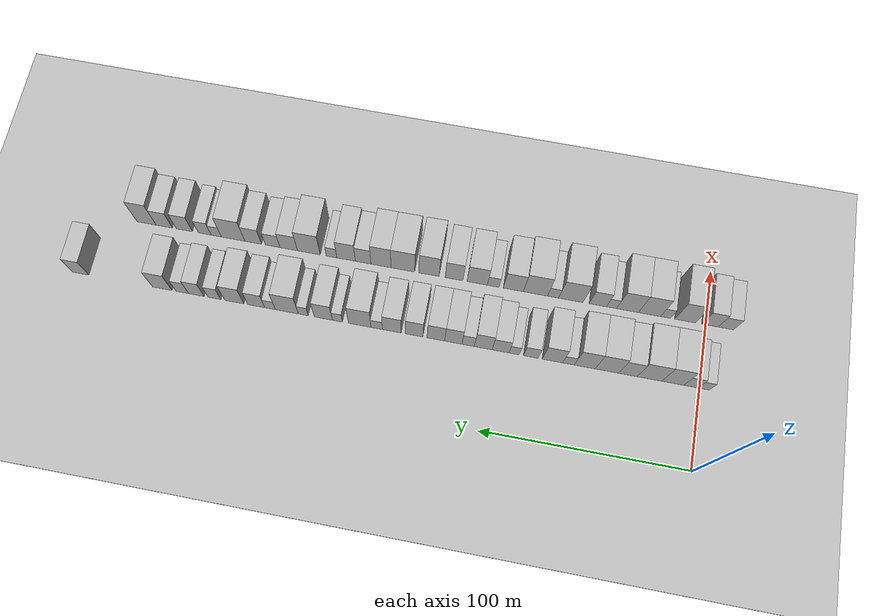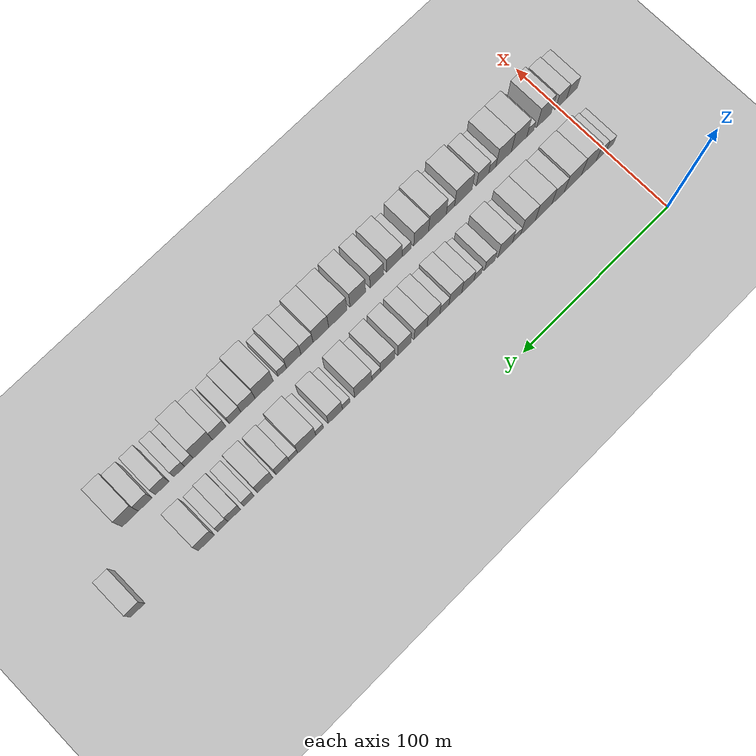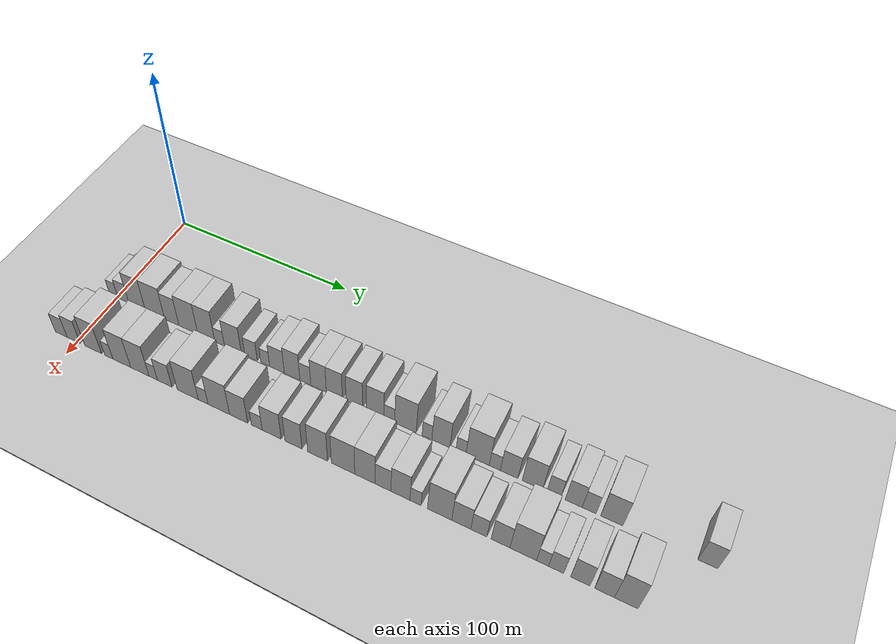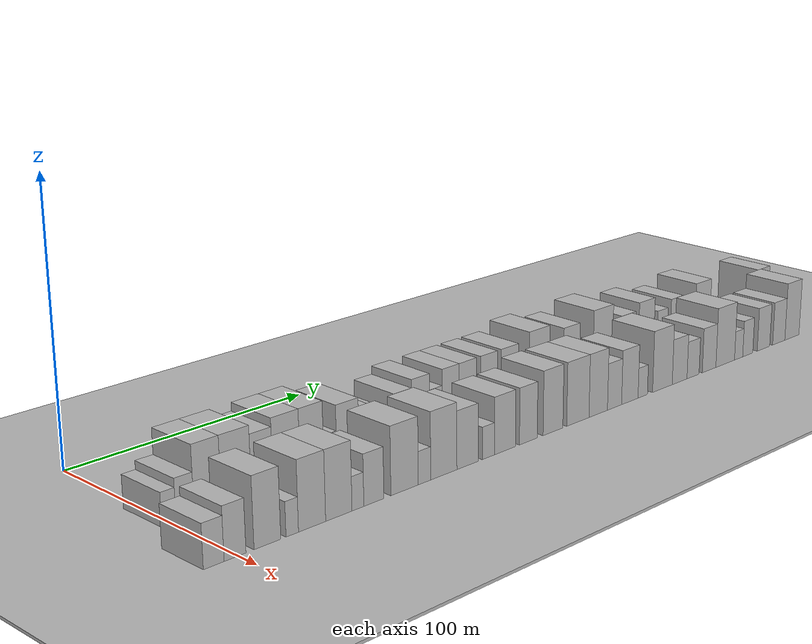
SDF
<sdf version="1.6">
 <world name="default">
  <include><name>ground_plane_1</name><uri>model://HANNAS_ground_plane</uri></include>
  <include>
   <name>ground_plane_2</name>
   <uri>model://HANNAS_ground_plane</uri>
   <pose>100 0 0  0 0 0</pose>
  </include>
  <model name="building_33">
   <static>1</static>
   <pose>50.0000 -1.9097 0 0.000000 0.000000 0.000000</pose>
   <link name="link">
    <pose>0 0 6.00 0 0 0</pose>
    <collision name="collision"><geometry><box><size>20.0000 5.2747 12.0000</size></box></geometry></collision>
    <visual name="visual">
     <cast_shadows>0</cast_shadows>
     <geometry><box><size>20.0000 5.2747 12.0000</size></box></geometry>
     <material>
      <script>
       <uri>model://HANNAS_wall/materials/scripts</uri>
       <uri>model://HANNAS_wall/materials/textures</uri>
       <name>vrc/HANNAS_wall</name>
      </script>
     </material>
    </visual>
   </link>
  </model>
  <model name="building_34">
   <static>1</static>
   <pose>50.0000 4.1421 0 0.000000 0.000000 0.000000</pose>
   <link name="link">
    <pose>0 0 7.50 0 0 0</pose>
    <collision name="collision"><geometry><box><size>20.0000 6.8289 15.0000</size></box></geometry></collision>
    <visual name="visual">
     <cast_shadows>0</cast_shadows>
     <geometry><box><size>20.0000 6.8289 15.0000</size></box></geometry>
     <material>
      <script>
       <uri>model://HANNAS_wall/materials/scripts</uri>
       <uri>model://HANNAS_wall/materials/textures</uri>
       <name>vrc/HANNAS_wall</name>
      </script>
     </material>
    </visual>
   </link>
  </model>
  <model name="building_35">
   <static>1</static>
   <pose>50.0000 12.7904 0 0.000000 0.000000 0.000000</pose>
   <link name="link">
    <pose>0 0 12.00 0 0 0</pose>
    <collision name="collision"><geometry><box><size>20.0000 10.4679 24.0000</size></box></geometry></collision>
    <visual name="visual">
     <cast_shadows>0</cast_shadows>
     <geometry><box><size>20.0000 10.4679 24.0000</size></box></geometry>
     <material>
      <script>
       <uri>model://HANNAS_wall/materials/scripts</uri>
       <uri>model://HANNAS_wall/materials/textures</uri>
       <name>vrc/HANNAS_wall</name>
      </script>
     </material>
    </visual>
   </link>
  </model>
  <model name="building_36">
   <static>1</static>
   <pose>50.0000 23.9557 0 0.000000 0.000000 0.000000</pose>
   <link name="link">
    <pose>0 0 12.00 0 0 0</pose>
    <collision name="collision"><geometry><box><size>20.0000 11.8626 24.0000</size></box></geometry></collision>
    <visual name="visual">
     <cast_shadows>0</cast_shadows>
     <geometry><box><size>20.0000 11.8626 24.0000</size></box></geometry>
     <material>
      <script>
       <uri>model://HANNAS_wall/materials/scripts</uri>
       <uri>model://HANNAS_wall/materials/textures</uri>
       <name>vrc/HANNAS_wall</name>
      </script>
     </material>
    </visual>
   </link>
  </model>
  <model name="building_37">
   <static>1</static>
   <pose>50.0000 34.2631 0 0.000000 0.000000 0.000000</pose>
   <link name="link">
    <pose>0 0 10.50 0 0 0</pose>
    <collision name="collision"><geometry><box><size>20.0000 8.7522 21.0000</size></box></geometry></collision>
    <visual name="visual">
     <cast_shadows>0</cast_shadows>
     <geometry><box><size>20.0000 8.7522 21.0000</size></box></geometry>
     <material>
      <script>
       <uri>model://HANNAS_wall/materials/scripts</uri>
       <uri>model://HANNAS_wall/materials/textures</uri>
       <name>vrc/HANNAS_wall</name>
      </script>
     </material>
    </visual>
   </link>
  </model>
  <model name="building_38">
   <static>1</static>
   <pose>50.0000 44.2862 0 0.000000 0.000000 0.000000</pose>
   <link name="link">
    <pose>0 0 12.00 0 0 0</pose>
    <collision name="collision"><geometry><box><size>20.0000 11.2942 24.0000</size></box></geometry></collision>
    <visual name="visual">
     <cast_shadows>0</cast_shadows>
     <geometry><box><size>20.0000 11.2942 24.0000</size></box></geometry>
     <material>
      <script>
       <uri>model://HANNAS_wall/materials/scripts</uri>
       <uri>model://HANNAS_wall/materials/textures</uri>
       <name>vrc/HANNAS_wall</name>
      </script>
     </material>
    </visual>
   </link>
  </model>
  <model name="building_39">
   <static>1</static>
   <pose>50.0000 54.9915 0 0.000000 0.000000 0.000000</pose>
   <link name="link">
    <pose>0 0 12.00 0 0 0</pose>
    <collision name="collision"><geometry><box><size>20.0000 10.1165 24.0000</size></box></geometry></collision>
    <visual name="visual">
     <cast_shadows>0</cast_shadows>
     <geometry><box><size>20.0000 10.1165 24.0000</size></box></geometry>
     <material>
      <script>
       <uri>model://HANNAS_wall/materials/scripts</uri>
       <uri>model://HANNAS_wall/materials/textures</uri>
       <name>vrc/HANNAS_wall</name>
      </script>
     </material>
    </visual>
   </link>
  </model>
  <model name="building_40">
   <static>1</static>
   <pose>50.0000 62.8666 0 0.000000 0.000000 0.000000</pose>
   <link name="link">
    <pose>0 0 6.00 0 0 0</pose>
    <collision name="collision"><geometry><box><size>20.0000 5.6337 12.0000</size></box></geometry></collision>
    <visual name="visual">
     <cast_shadows>0</cast_shadows>
     <geometry><box><size>20.0000 5.6337 12.0000</size></box></geometry>
     <material>
      <script>
       <uri>model://HANNAS_wall/materials/scripts</uri>
       <uri>model://HANNAS_wall/materials/textures</uri>
       <name>vrc/HANNAS_wall</name>
      </script>
     </material>
    </visual>
   </link>
  </model>
  <model name="building_41">
   <static>1</static>
   <pose>50.0000 70.6148 0 0.000000 0.000000 0.000000</pose>
   <link name="link">
    <pose>0 0 10.50 0 0 0</pose>
    <collision name="collision"><geometry><box><size>20.0000 9.8627 21.0000</size></box></geometry></collision>
    <visual name="visual">
     <cast_shadows>0</cast_shadows>
     <geometry><box><size>20.0000 9.8627 21.0000</size></box></geometry>
     <material>
      <script>
       <uri>model://HANNAS_wall/materials/scripts</uri>
       <uri>model://HANNAS_wall/materials/textures</uri>
       <name>vrc/HANNAS_wall</name>
      </script>
     </material>
    </visual>
   </link>
  </model>
  <model name="building_42">
   <static>1</static>
   <pose>50.0000 81.0959 0 0.000000 0.000000 0.000000</pose>
   <link name="link">
    <pose>0 0 7.50 0 0 0</pose>
    <collision name="collision"><geometry><box><size>20.0000 7.0994 15.0000</size></box></geometry></collision>
    <visual name="visual">
     <cast_shadows>0</cast_shadows>
     <geometry><box><size>20.0000 7.0994 15.0000</size></box></geometry>
     <material>
      <script>
       <uri>model://HANNAS_wall/materials/scripts</uri>
       <uri>model://HANNAS_wall/materials/textures</uri>
       <name>vrc/HANNAS_wall</name>
      </script>
     </material>
    </visual>
   </link>
  </model>
  <model name="building_43">
   <static>1</static>
   <pose>50.0000 89.1589 0 0.000000 0.000000 0.000000</pose>
   <link name="link">
    <pose>0 0 6.00 0 0 0</pose>
    <collision name="collision"><geometry><box><size>20.0000 5.0266 12.0000</size></box></geometry></collision>
    <visual name="visual">
     <cast_shadows>0</cast_shadows>
     <geometry><box><size>20.0000 5.0266 12.0000</size></box></geometry>
     <material>
      <script>
       <uri>model://HANNAS_wall/materials/scripts</uri>
       <uri>model://HANNAS_wall/materials/textures</uri>
       <name>vrc/HANNAS_wall</name>
      </script>
     </material>
    </visual>
   </link>
  </model>
  <model name="building_44">
   <static>1</static>
   <pose>50.0000 95.7803 0 0.000000 0.000000 0.000000</pose>
   <link name="link">
    <pose>0 0 9.00 0 0 0</pose>
    <collision name="collision"><geometry><box><size>20.0000 8.2162 18.0000</size></box></geometry></collision>
    <visual name="visual">
     <cast_shadows>0</cast_shadows>
     <geometry><box><size>20.0000 8.2162 18.0000</size></box></geometry>
     <material>
      <script>
       <uri>model://HANNAS_wall/materials/scripts</uri>
       <uri>model://HANNAS_wall/materials/textures</uri>
       <name>vrc/HANNAS_wall</name>
      </script>
     </material>
    </visual>
   </link>
  </model>
  <model name="building_45">
   <static>1</static>
   <pose>50.0000 104.2209 0 0.000000 0.000000 0.000000</pose>
   <link name="link">
    <pose>0 0 10.50 0 0 0</pose>
    <collision name="collision"><geometry><box><size>20.0000 8.6650 21.0000</size></box></geometry></collision>
    <visual name="visual">
     <cast_shadows>0</cast_shadows>
     <geometry><box><size>20.0000 8.6650 21.0000</size></box></geometry>
     <material>
      <script>
       <uri>model://HANNAS_wall/materials/scripts</uri>
       <uri>model://HANNAS_wall/materials/textures</uri>
       <name>vrc/HANNAS_wall</name>
      </script>
     </material>
    </visual>
   </link>
  </model>
  <model name="building_46">
   <static>1</static>
   <pose>50.0000 111.5624 0 0.000000 0.000000 0.000000</pose>
   <link name="link">
    <pose>0 0 7.50 0 0 0</pose>
    <collision name="collision"><geometry><box><size>20.0000 6.0179 15.0000</size></box></geometry></collision>
    <visual name="visual">
     <cast_shadows>0</cast_shadows>
     <geometry><box><size>20.0000 6.0179 15.0000</size></box></geometry>
     <material>
      <script>
       <uri>model://HANNAS_wall/materials/scripts</uri>
       <uri>model://HANNAS_wall/materials/textures</uri>
       <name>vrc/HANNAS_wall</name>
      </script>
     </material>
    </visual>
   </link>
  </model>
  <model name="building_47">
   <static>1</static>
   <pose>50.0000 118.7976 0 0.000000 0.000000 0.000000</pose>
   <link name="link">
    <pose>0 0 10.50 0 0 0</pose>
    <collision name="collision"><geometry><box><size>20.0000 8.4525 21.0000</size></box></geometry></collision>
    <visual name="visual">
     <cast_shadows>0</cast_shadows>
     <geometry><box><size>20.0000 8.4525 21.0000</size></box></geometry>
     <material>
      <script>
       <uri>model://HANNAS_wall/materials/scripts</uri>
       <uri>model://HANNAS_wall/materials/textures</uri>
       <name>vrc/HANNAS_wall</name>
      </script>
     </material>
    </visual>
   </link>
  </model>
  <model name="building_48">
   <static>1</static>
   <pose>50.0000 127.3523 0 0.000000 0.000000 0.000000</pose>
   <link name="link">
    <pose>0 0 10.50 0 0 0</pose>
    <collision name="collision"><geometry><box><size>20.0000 8.6569 21.0000</size></box></geometry></collision>
    <visual name="visual">
     <cast_shadows>0</cast_shadows>
     <geometry><box><size>20.0000 8.6569 21.0000</size></box></geometry>
     <material>
      <script>
       <uri>model://HANNAS_wall/materials/scripts</uri>
       <uri>model://HANNAS_wall/materials/textures</uri>
       <name>vrc/HANNAS_wall</name>
      </script>
     </material>
    </visual>
   </link>
  </model>
  <model name="building_49">
   <static>1</static>
   <pose>50.0000 138.0008 0 0.000000 0.000000 0.000000</pose>
   <link name="link">
    <pose>0 0 10.50 0 0 0</pose>
    <collision name="collision"><geometry><box><size>20.0000 8.6401 21.0000</size></box></geometry></collision>
    <visual name="visual">
     <cast_shadows>0</cast_shadows>
     <geometry><box><size>20.0000 8.6401 21.0000</size></box></geometry>
     <material>
      <script>
       <uri>model://HANNAS_wall/materials/scripts</uri>
       <uri>model://HANNAS_wall/materials/textures</uri>
       <name>vrc/HANNAS_wall</name>
      </script>
     </material>
    </visual>
   </link>
  </model>
  <model name="building_50">
   <static>1</static>
   <pose>50.0000 148.9457 0 0.000000 0.000000 0.000000</pose>
   <link name="link">
    <pose>0 0 10.50 0 0 0</pose>
    <collision name="collision"><geometry><box><size>20.0000 9.2497 21.0000</size></box></geometry></collision>
    <visual name="visual">
     <cast_shadows>0</cast_shadows>
     <geometry><box><size>20.0000 9.2497 21.0000</size></box></geometry>
     <material>
      <script>
       <uri>model://HANNAS_wall/materials/scripts</uri>
       <uri>model://HANNAS_wall/materials/textures</uri>
       <name>vrc/HANNAS_wall</name>
      </script>
     </material>
    </visual>
   </link>
  </model>
  <model name="building_51">
   <static>1</static>
   <pose>50.0000 156.3845 0 0.000000 0.000000 0.000000</pose>
   <link name="link">
    <pose>0 0 6.00 0 0 0</pose>
    <collision name="collision"><geometry><box><size>20.0000 5.6278 12.0000</size></box></geometry></collision>
    <visual name="visual">
     <cast_shadows>0</cast_shadows>
     <geometry><box><size>20.0000 5.6278 12.0000</size></box></geometry>
     <material>
      <script>
       <uri>model://HANNAS_wall/materials/scripts</uri>
       <uri>model://HANNAS_wall/materials/textures</uri>
       <name>vrc/HANNAS_wall</name>
      </script>
     </material>
    </visual>
   </link>
  </model>
  <model name="building_52">
   <static>1</static>
   <pose>50.0000 164.7466 0 0.000000 0.000000 0.000000</pose>
   <link name="link">
    <pose>0 0 12.00 0 0 0</pose>
    <collision name="collision"><geometry><box><size>20.0000 11.0963 24.0000</size></box></geometry></collision>
    <visual name="visual">
     <cast_shadows>0</cast_shadows>
     <geometry><box><size>20.0000 11.0963 24.0000</size></box></geometry>
     <material>
      <script>
       <uri>model://HANNAS_wall/materials/scripts</uri>
       <uri>model://HANNAS_wall/materials/textures</uri>
       <name>vrc/HANNAS_wall</name>
      </script>
     </material>
    </visual>
   </link>
  </model>
  <model name="building_53">
   <static>1</static>
   <pose>50.0000 175.7574 0 0.000000 0.000000 0.000000</pose>
   <link name="link">
    <pose>0 0 6.00 0 0 0</pose>
    <collision name="collision"><geometry><box><size>20.0000 4.9253 12.0000</size></box></geometry></collision>
    <visual name="visual">
     <cast_shadows>0</cast_shadows>
     <geometry><box><size>20.0000 4.9253 12.0000</size></box></geometry>
     <material>
      <script>
       <uri>model://HANNAS_wall/materials/scripts</uri>
       <uri>model://HANNAS_wall/materials/textures</uri>
       <name>vrc/HANNAS_wall</name>
      </script>
     </material>
    </visual>
   </link>
  </model>
  <model name="building_54">
   <static>1</static>
   <pose>50.0000 182.7451 0 0.000000 0.000000 0.000000</pose>
   <link name="link">
    <pose>0 0 10.50 0 0 0</pose>
    <collision name="collision"><geometry><box><size>20.0000 9.0500 21.0000</size></box></geometry></collision>
    <visual name="visual">
     <cast_shadows>0</cast_shadows>
     <geometry><box><size>20.0000 9.0500 21.0000</size></box></geometry>
     <material>
      <script>
       <uri>model://HANNAS_wall/materials/scripts</uri>
       <uri>model://HANNAS_wall/materials/textures</uri>
       <name>vrc/HANNAS_wall</name>
      </script>
     </material>
    </visual>
   </link>
  </model>
  <model name="building_55">
   <static>1</static>
   <pose>50.0000 192.7266 0 0.000000 0.000000 0.000000</pose>
   <link name="link">
    <pose>0 0 6.00 0 0 0</pose>
    <collision name="collision"><geometry><box><size>20.0000 4.9130 12.0000</size></box></geometry></collision>
    <visual name="visual">
     <cast_shadows>0</cast_shadows>
     <geometry><box><size>20.0000 4.9130 12.0000</size></box></geometry>
     <material>
      <script>
       <uri>model://HANNAS_wall/materials/scripts</uri>
       <uri>model://HANNAS_wall/materials/textures</uri>
       <name>vrc/HANNAS_wall</name>
      </script>
     </material>
    </visual>
   </link>
  </model>
  <model name="building_56">
   <static>1</static>
   <pose>50.0000 200.9082 0 0.000000 0.000000 0.000000</pose>
   <link name="link">
    <pose>0 0 12.00 0 0 0</pose>
    <collision name="collision"><geometry><box><size>20.0000 11.4501 24.0000</size></box></geometry></collision>
    <visual name="visual">
     <cast_shadows>0</cast_shadows>
     <geometry><box><size>20.0000 11.4501 24.0000</size></box></geometry>
     <material>
      <script>
       <uri>model://HANNAS_wall/materials/scripts</uri>
       <uri>model://HANNAS_wall/materials/textures</uri>
       <name>vrc/HANNAS_wall</name>
      </script>
     </material>
    </visual>
   </link>
  </model>
  <model name="building_57">
   <static>1</static>
   <pose>50.0000 209.3006 0 0.000000 0.000000 0.000000</pose>
   <link name="link">
    <pose>0 0 6.00 0 0 0</pose>
    <collision name="collision"><geometry><box><size>20.0000 5.3347 12.0000</size></box></geometry></collision>
    <visual name="visual">
     <cast_shadows>0</cast_shadows>
     <geometry><box><size>20.0000 5.3347 12.0000</size></box></geometry>
     <material>
      <script>
       <uri>model://HANNAS_wall/materials/scripts</uri>
       <uri>model://HANNAS_wall/materials/textures</uri>
       <name>vrc/HANNAS_wall</name>
      </script>
     </material>
    </visual>
   </link>
  </model>
  <model name="building_58">
   <static>1</static>
   <pose>50.0000 216.1868 0 0.000000 0.000000 0.000000</pose>
   <link name="link">
    <pose>0 0 9.00 0 0 0</pose>
    <collision name="collision"><geometry><box><size>20.0000 8.4378 18.0000</size></box></geometry></collision>
    <visual name="visual">
     <cast_shadows>0</cast_shadows>
     <geometry><box><size>20.0000 8.4378 18.0000</size></box></geometry>
     <material>
      <script>
       <uri>model://HANNAS_wall/materials/scripts</uri>
       <uri>model://HANNAS_wall/materials/textures</uri>
       <name>vrc/HANNAS_wall</name>
      </script>
     </material>
    </visual>
   </link>
  </model>
  <model name="building_59">
   <static>1</static>
   <pose>50.0000 227.2137 0 0.000000 0.000000 0.000000</pose>
   <link name="link">
    <pose>0 0 10.50 0 0 0</pose>
    <collision name="collision"><geometry><box><size>20.0000 9.6159 21.0000</size></box></geometry></collision>
    <visual name="visual">
     <cast_shadows>0</cast_shadows>
     <geometry><box><size>20.0000 9.6159 21.0000</size></box></geometry>
     <material>
      <script>
       <uri>model://HANNAS_wall/materials/scripts</uri>
       <uri>model://HANNAS_wall/materials/textures</uri>
       <name>vrc/HANNAS_wall</name>
      </script>
     </material>
    </visual>
   </link>
  </model>
  <model name="building_60">
   <static>1</static>
   <pose>50.0000 237.2472 0 0.000000 0.000000 0.000000</pose>
   <link name="link">
    <pose>0 0 7.50 0 0 0</pose>
    <collision name="collision"><geometry><box><size>20.0000 6.4511 15.0000</size></box></geometry></collision>
    <visual name="visual">
     <cast_shadows>0</cast_shadows>
     <geometry><box><size>20.0000 6.4511 15.0000</size></box></geometry>
     <material>
      <script>
       <uri>model://HANNAS_wall/materials/scripts</uri>
       <uri>model://HANNAS_wall/materials/textures</uri>
       <name>vrc/HANNAS_wall</name>
      </script>
     </material>
    </visual>
   </link>
  </model>
  <model name="building_61">
   <static>1</static>
   <pose>50.0000 246.3686 0 0.000000 0.000000 0.000000</pose>
   <link name="link">
    <pose>0 0 9.00 0 0 0</pose>
    <collision name="collision"><geometry><box><size>20.0000 7.7917 18.0000</size></box></geometry></collision>
    <visual name="visual">
     <cast_shadows>0</cast_shadows>
     <geometry><box><size>20.0000 7.7917 18.0000</size></box></geometry>
     <material>
      <script>
       <uri>model://HANNAS_wall/materials/scripts</uri>
       <uri>model://HANNAS_wall/materials/textures</uri>
       <name>vrc/HANNAS_wall</name>
      </script>
     </material>
    </visual>
   </link>
  </model>
  <model name="building_62">
   <static>1</static>
   <pose>50.0000 253.4412 0 0.000000 0.000000 0.000000</pose>
   <link name="link">
    <pose>0 0 7.50 0 0 0</pose>
    <collision name="collision"><geometry><box><size>20.0000 6.3536 15.0000</size></box></geometry></collision>
    <visual name="visual">
     <cast_shadows>0</cast_shadows>
     <geometry><box><size>20.0000 6.3536 15.0000</size></box></geometry>
     <material>
      <script>
       <uri>model://HANNAS_wall/materials/scripts</uri>
       <uri>model://HANNAS_wall/materials/textures</uri>
       <name>vrc/HANNAS_wall</name>
      </script>
     </material>
    </visual>
   </link>
  </model>
  <model name="building_63">
   <static>1</static>
   <pose>50.0000 263.5972 0 0.000000 0.000000 0.000000</pose>
   <link name="link">
    <pose>0 0 10.50 0 0 0</pose>
    <collision name="collision"><geometry><box><size>20.0000 9.9584 21.0000</size></box></geometry></collision>
    <visual name="visual">
     <cast_shadows>0</cast_shadows>
     <geometry><box><size>20.0000 9.9584 21.0000</size></box></geometry>
     <material>
      <script>
       <uri>model://HANNAS_wall/materials/scripts</uri>
       <uri>model://HANNAS_wall/materials/textures</uri>
       <name>vrc/HANNAS_wall</name>
      </script>
     </material>
    </visual>
   </link>
  </model>
  <model name="building_64">
   <static>1</static>
   <pose>50.0000 305.2808 0 0.000000 0.000000 0.000000</pose>
   <link name="link">
    <pose>0 0 9.00 0 0 0</pose>
    <collision name="collision"><geometry><box><size>20.0000 8.4695 18.0000</size></box></geometry></collision>
    <visual name="visual">
     <cast_shadows>0</cast_shadows>
     <geometry><box><size>20.0000 8.4695 18.0000</size></box></geometry>
     <material>
      <script>
       <uri>model://HANNAS_wall/materials/scripts</uri>
       <uri>model://HANNAS_wall/materials/textures</uri>
       <name>vrc/HANNAS_wall</name>
      </script>
     </material>
    </visual>
   </link>
  </model>
  <model name="building_96">
   <static>1</static>
   <pose>82.0000 -9.6031 0 0.000000 0.000000 0.000000</pose>
   <link name="link">
    <pose>0 0 7.50 0 0 0</pose>
    <collision name="collision"><geometry><box><size>20.0000 7.4662 15.0000</size></box></geometry></collision>
    <visual name="visual">
     <cast_shadows>0</cast_shadows>
     <geometry><box><size>20.0000 7.4662 15.0000</size></box></geometry>
     <material>
      <script>
       <uri>model://HANNAS_wall/materials/scripts</uri>
       <uri>model://HANNAS_wall/materials/textures</uri>
       <name>vrc/HANNAS_wall</name>
      </script>
     </material>
    </visual>
   </link>
  </model>
  <model name="building_97">
   <static>1</static>
   <pose>82.0000 -1.8589 0 0.000000 0.000000 0.000000</pose>
   <link name="link">
    <pose>0 0 9.00 0 0 0</pose>
    <collision name="collision"><geometry><box><size>20.0000 8.0221 18.0000</size></box></geometry></collision>
    <visual name="visual">
     <cast_shadows>0</cast_shadows>
     <geometry><box><size>20.0000 8.0221 18.0000</size></box></geometry>
     <material>
      <script>
       <uri>model://HANNAS_wall/materials/scripts</uri>
       <uri>model://HANNAS_wall/materials/textures</uri>
       <name>vrc/HANNAS_wall</name>
      </script>
     </material>
    </visual>
   </link>
  </model>
  <model name="building_98">
   <static>1</static>
   <pose>82.0000 10.2178 0 0.000000 0.000000 0.000000</pose>
   <link name="link">
    <pose>0 0 12.00 0 0 0</pose>
    <collision name="collision"><geometry><box><size>20.0000 10.1314 24.0000</size></box></geometry></collision>
    <visual name="visual">
     <cast_shadows>0</cast_shadows>
     <geometry><box><size>20.0000 10.1314 24.0000</size></box></geometry>
     <material>
      <script>
       <uri>model://HANNAS_wall/materials/scripts</uri>
       <uri>model://HANNAS_wall/materials/textures</uri>
       <name>vrc/HANNAS_wall</name>
      </script>
     </material>
    </visual>
   </link>
  </model>
  <model name="building_99">
   <static>1</static>
   <pose>82.0000 19.7137 0 0.000000 0.000000 0.000000</pose>
   <link name="link">
    <pose>0 0 6.00 0 0 0</pose>
    <collision name="collision"><geometry><box><size>20.0000 4.8604 12.0000</size></box></geometry></collision>
    <visual name="visual">
     <cast_shadows>0</cast_shadows>
     <geometry><box><size>20.0000 4.8604 12.0000</size></box></geometry>
     <material>
      <script>
       <uri>model://HANNAS_wall/materials/scripts</uri>
       <uri>model://HANNAS_wall/materials/textures</uri>
       <name>vrc/HANNAS_wall</name>
      </script>
     </material>
    </visual>
   </link>
  </model>
  <model name="building_100">
   <static>1</static>
   <pose>82.0000 27.5355 0 0.000000 0.000000 0.000000</pose>
   <link name="link">
    <pose>0 0 12.00 0 0 0</pose>
    <collision name="collision"><geometry><box><size>20.0000 10.7830 24.0000</size></box></geometry></collision>
    <visual name="visual">
     <cast_shadows>0</cast_shadows>
     <geometry><box><size>20.0000 10.7830 24.0000</size></box></geometry>
     <material>
      <script>
       <uri>model://HANNAS_wall/materials/scripts</uri>
       <uri>model://HANNAS_wall/materials/textures</uri>
       <name>vrc/HANNAS_wall</name>
      </script>
     </material>
    </visual>
   </link>
  </model>
  <model name="building_101">
   <static>1</static>
   <pose>82.0000 38.2946 0 0.000000 0.000000 0.000000</pose>
   <link name="link">
    <pose>0 0 12.00 0 0 0</pose>
    <collision name="collision"><geometry><box><size>20.0000 10.7352 24.0000</size></box></geometry></collision>
    <visual name="visual">
     <cast_shadows>0</cast_shadows>
     <geometry><box><size>20.0000 10.7352 24.0000</size></box></geometry>
     <material>
      <script>
       <uri>model://HANNAS_wall/materials/scripts</uri>
       <uri>model://HANNAS_wall/materials/textures</uri>
       <name>vrc/HANNAS_wall</name>
      </script>
     </material>
    </visual>
   </link>
  </model>
  <model name="building_102">
   <static>1</static>
   <pose>82.0000 46.1282 0 0.000000 0.000000 0.000000</pose>
   <link name="link">
    <pose>0 0 6.00 0 0 0</pose>
    <collision name="collision"><geometry><box><size>20.0000 4.9320 12.0000</size></box></geometry></collision>
    <visual name="visual">
     <cast_shadows>0</cast_shadows>
     <geometry><box><size>20.0000 4.9320 12.0000</size></box></geometry>
     <material>
      <script>
       <uri>model://HANNAS_wall/materials/scripts</uri>
       <uri>model://HANNAS_wall/materials/textures</uri>
       <name>vrc/HANNAS_wall</name>
      </script>
     </material>
    </visual>
   </link>
  </model>
  <model name="building_103">
   <static>1</static>
   <pose>82.0000 52.8352 0 0.000000 0.000000 0.000000</pose>
   <link name="link">
    <pose>0 0 9.00 0 0 0</pose>
    <collision name="collision"><geometry><box><size>20.0000 8.4819 18.0000</size></box></geometry></collision>
    <visual name="visual">
     <cast_shadows>0</cast_shadows>
     <geometry><box><size>20.0000 8.4819 18.0000</size></box></geometry>
     <material>
      <script>
       <uri>model://HANNAS_wall/materials/scripts</uri>
       <uri>model://HANNAS_wall/materials/textures</uri>
       <name>vrc/HANNAS_wall</name>
      </script>
     </material>
    </visual>
   </link>
  </model>
  <model name="building_104">
   <static>1</static>
   <pose>82.0000 66.0747 0 0.000000 0.000000 0.000000</pose>
   <link name="link">
    <pose>0 0 12.00 0 0 0</pose>
    <collision name="collision"><geometry><box><size>20.0000 11.9971 24.0000</size></box></geometry></collision>
    <visual name="visual">
     <cast_shadows>0</cast_shadows>
     <geometry><box><size>20.0000 11.9971 24.0000</size></box></geometry>
     <material>
      <script>
       <uri>model://HANNAS_wall/materials/scripts</uri>
       <uri>model://HANNAS_wall/materials/textures</uri>
       <name>vrc/HANNAS_wall</name>
      </script>
     </material>
    </visual>
   </link>
  </model>
  <model name="building_105">
   <static>1</static>
   <pose>82.0000 74.8404 0 0.000000 0.000000 0.000000</pose>
   <link name="link">
    <pose>0 0 6.00 0 0 0</pose>
    <collision name="collision"><geometry><box><size>20.0000 5.5343 12.0000</size></box></geometry></collision>
    <visual name="visual">
     <cast_shadows>0</cast_shadows>
     <geometry><box><size>20.0000 5.5343 12.0000</size></box></geometry>
     <material>
      <script>
       <uri>model://HANNAS_wall/materials/scripts</uri>
       <uri>model://HANNAS_wall/materials/textures</uri>
       <name>vrc/HANNAS_wall</name>
      </script>
     </material>
    </visual>
   </link>
  </model>
  <model name="building_106">
   <static>1</static>
   <pose>82.0000 83.5915 0 0.000000 0.000000 0.000000</pose>
   <link name="link">
    <pose>0 0 12.00 0 0 0</pose>
    <collision name="collision"><geometry><box><size>20.0000 11.9679 24.0000</size></box></geometry></collision>
    <visual name="visual">
     <cast_shadows>0</cast_shadows>
     <geometry><box><size>20.0000 11.9679 24.0000</size></box></geometry>
     <material>
      <script>
       <uri>model://HANNAS_wall/materials/scripts</uri>
       <uri>model://HANNAS_wall/materials/textures</uri>
       <name>vrc/HANNAS_wall</name>
      </script>
     </material>
    </visual>
   </link>
  </model>
  <model name="building_107">
   <static>1</static>
   <pose>82.0000 94.5449 0 0.000000 0.000000 0.000000</pose>
   <link name="link">
    <pose>0 0 10.50 0 0 0</pose>
    <collision name="collision"><geometry><box><size>20.0000 9.9390 21.0000</size></box></geometry></collision>
    <visual name="visual">
     <cast_shadows>0</cast_shadows>
     <geometry><box><size>20.0000 9.9390 21.0000</size></box></geometry>
     <material>
      <script>
       <uri>model://HANNAS_wall/materials/scripts</uri>
       <uri>model://HANNAS_wall/materials/textures</uri>
       <name>vrc/HANNAS_wall</name>
      </script>
     </material>
    </visual>
   </link>
  </model>
  <model name="building_108">
   <static>1</static>
   <pose>82.0000 104.4616 0 0.000000 0.000000 0.000000</pose>
   <link name="link">
    <pose>0 0 6.00 0 0 0</pose>
    <collision name="collision"><geometry><box><size>20.0000 5.8944 12.0000</size></box></geometry></collision>
    <visual name="visual">
     <cast_shadows>0</cast_shadows>
     <geometry><box><size>20.0000 5.8944 12.0000</size></box></geometry>
     <material>
      <script>
       <uri>model://HANNAS_wall/materials/scripts</uri>
       <uri>model://HANNAS_wall/materials/textures</uri>
       <name>vrc/HANNAS_wall</name>
      </script>
     </material>
    </visual>
   </link>
  </model>
  <model name="building_109">
   <static>1</static>
   <pose>82.0000 112.4990 0 0.000000 0.000000 0.000000</pose>
   <link name="link">
    <pose>0 0 10.50 0 0 0</pose>
    <collision name="collision"><geometry><box><size>20.0000 10.1804 21.0000</size></box></geometry></collision>
    <visual name="visual">
     <cast_shadows>0</cast_shadows>
     <geometry><box><size>20.0000 10.1804 21.0000</size></box></geometry>
     <material>
      <script>
       <uri>model://HANNAS_wall/materials/scripts</uri>
       <uri>model://HANNAS_wall/materials/textures</uri>
       <name>vrc/HANNAS_wall</name>
      </script>
     </material>
    </visual>
   </link>
  </model>
  <model name="building_110">
   <static>1</static>
   <pose>82.0000 124.0530 0 0.000000 0.000000 0.000000</pose>
   <link name="link">
    <pose>0 0 10.50 0 0 0</pose>
    <collision name="collision"><geometry><box><size>20.0000 8.9275 21.0000</size></box></geometry></collision>
    <visual name="visual">
     <cast_shadows>0</cast_shadows>
     <geometry><box><size>20.0000 8.9275 21.0000</size></box></geometry>
     <material>
      <script>
       <uri>model://HANNAS_wall/materials/scripts</uri>
       <uri>model://HANNAS_wall/materials/textures</uri>
       <name>vrc/HANNAS_wall</name>
      </script>
     </material>
    </visual>
   </link>
  </model>
  <model name="building_111">
   <static>1</static>
   <pose>82.0000 136.6353 0 0.000000 0.000000 0.000000</pose>
   <link name="link">
    <pose>0 0 12.00 0 0 0</pose>
    <collision name="collision"><geometry><box><size>20.0000 10.2373 24.0000</size></box></geometry></collision>
    <visual name="visual">
     <cast_shadows>0</cast_shadows>
     <geometry><box><size>20.0000 10.2373 24.0000</size></box></geometry>
     <material>
      <script>
       <uri>model://HANNAS_wall/materials/scripts</uri>
       <uri>model://HANNAS_wall/materials/textures</uri>
       <name>vrc/HANNAS_wall</name>
      </script>
     </material>
    </visual>
   </link>
  </model>
  <model name="building_112">
   <static>1</static>
   <pose>82.0000 149.6912 0 0.000000 0.000000 0.000000</pose>
   <link name="link">
    <pose>0 0 12.00 0 0 0</pose>
    <collision name="collision"><geometry><box><size>20.0000 11.8743 24.0000</size></box></geometry></collision>
    <visual name="visual">
     <cast_shadows>0</cast_shadows>
     <geometry><box><size>20.0000 11.8743 24.0000</size></box></geometry>
     <material>
      <script>
       <uri>model://HANNAS_wall/materials/scripts</uri>
       <uri>model://HANNAS_wall/materials/textures</uri>
       <name>vrc/HANNAS_wall</name>
      </script>
     </material>
    </visual>
   </link>
  </model>
  <model name="building_113">
   <static>1</static>
   <pose>82.0000 160.6769 0 0.000000 0.000000 0.000000</pose>
   <link name="link">
    <pose>0 0 12.00 0 0 0</pose>
    <collision name="collision"><geometry><box><size>20.0000 10.0971 24.0000</size></box></geometry></collision>
    <visual name="visual">
     <cast_shadows>0</cast_shadows>
     <geometry><box><size>20.0000 10.0971 24.0000</size></box></geometry>
     <material>
      <script>
       <uri>model://HANNAS_wall/materials/scripts</uri>
       <uri>model://HANNAS_wall/materials/textures</uri>
       <name>vrc/HANNAS_wall</name>
      </script>
     </material>
    </visual>
   </link>
  </model>
  <model name="building_114">
   <static>1</static>
   <pose>82.0000 169.6606 0 0.000000 0.000000 0.000000</pose>
   <link name="link">
    <pose>0 0 9.00 0 0 0</pose>
    <collision name="collision"><geometry><box><size>20.0000 7.8704 18.0000</size></box></geometry></collision>
    <visual name="visual">
     <cast_shadows>0</cast_shadows>
     <geometry><box><size>20.0000 7.8704 18.0000</size></box></geometry>
     <material>
      <script>
       <uri>model://HANNAS_wall/materials/scripts</uri>
       <uri>model://HANNAS_wall/materials/textures</uri>
       <name>vrc/HANNAS_wall</name>
      </script>
     </material>
    </visual>
   </link>
  </model>
  <model name="building_115">
   <static>1</static>
   <pose>82.0000 178.2713 0 0.000000 0.000000 0.000000</pose>
   <link name="link">
    <pose>0 0 10.50 0 0 0</pose>
    <collision name="collision"><geometry><box><size>20.0000 9.3509 21.0000</size></box></geometry></collision>
    <visual name="visual">
     <cast_shadows>0</cast_shadows>
     <geometry><box><size>20.0000 9.3509 21.0000</size></box></geometry>
     <material>
      <script>
       <uri>model://HANNAS_wall/materials/scripts</uri>
       <uri>model://HANNAS_wall/materials/textures</uri>
       <name>vrc/HANNAS_wall</name>
      </script>
     </material>
    </visual>
   </link>
  </model>
  <model name="building_116">
   <static>1</static>
   <pose>82.0000 185.6526 0 0.000000 0.000000 0.000000</pose>
   <link name="link">
    <pose>0 0 6.00 0 0 0</pose>
    <collision name="collision"><geometry><box><size>20.0000 5.4118 12.0000</size></box></geometry></collision>
    <visual name="visual">
     <cast_shadows>0</cast_shadows>
     <geometry><box><size>20.0000 5.4118 12.0000</size></box></geometry>
     <material>
      <script>
       <uri>model://HANNAS_wall/materials/scripts</uri>
       <uri>model://HANNAS_wall/materials/textures</uri>
       <name>vrc/HANNAS_wall</name>
      </script>
     </material>
    </visual>
   </link>
  </model>
  <model name="building_117">
   <static>1</static>
   <pose>82.0000 197.1666 0 0.000000 0.000000 0.000000</pose>
   <link name="link">
    <pose>0 0 12.00 0 0 0</pose>
    <collision name="collision"><geometry><box><size>20.0000 11.6161 24.0000</size></box></geometry></collision>
    <visual name="visual">
     <cast_shadows>0</cast_shadows>
     <geometry><box><size>20.0000 11.6161 24.0000</size></box></geometry>
     <material>
      <script>
       <uri>model://HANNAS_wall/materials/scripts</uri>
       <uri>model://HANNAS_wall/materials/textures</uri>
       <name>vrc/HANNAS_wall</name>
      </script>
     </material>
    </visual>
   </link>
  </model>
  <model name="building_118">
   <static>1</static>
   <pose>82.0000 207.4441 0 0.000000 0.000000 0.000000</pose>
   <link name="link">
    <pose>0 0 9.00 0 0 0</pose>
    <collision name="collision"><geometry><box><size>20.0000 8.9389 18.0000</size></box></geometry></collision>
    <visual name="visual">
     <cast_shadows>0</cast_shadows>
     <geometry><box><size>20.0000 8.9389 18.0000</size></box></geometry>
     <material>
      <script>
       <uri>model://HANNAS_wall/materials/scripts</uri>
       <uri>model://HANNAS_wall/materials/textures</uri>
       <name>vrc/HANNAS_wall</name>
      </script>
     </material>
    </visual>
   </link>
  </model>
  <model name="building_119">
   <static>1</static>
   <pose>82.0000 215.6169 0 0.000000 0.000000 0.000000</pose>
   <link name="link">
    <pose>0 0 7.50 0 0 0</pose>
    <collision name="collision"><geometry><box><size>20.0000 7.4066 15.0000</size></box></geometry></collision>
    <visual name="visual">
     <cast_shadows>0</cast_shadows>
     <geometry><box><size>20.0000 7.4066 15.0000</size></box></geometry>
     <material>
      <script>
       <uri>model://HANNAS_wall/materials/scripts</uri>
       <uri>model://HANNAS_wall/materials/textures</uri>
       <name>vrc/HANNAS_wall</name>
      </script>
     </material>
    </visual>
   </link>
  </model>
  <model name="building_120">
   <static>1</static>
   <pose>82.0000 225.5932 0 0.000000 0.000000 0.000000</pose>
   <link name="link">
    <pose>0 0 9.00 0 0 0</pose>
    <collision name="collision"><geometry><box><size>20.0000 8.5462 18.0000</size></box></geometry></collision>
    <visual name="visual">
     <cast_shadows>0</cast_shadows>
     <geometry><box><size>20.0000 8.5462 18.0000</size></box></geometry>
     <material>
      <script>
       <uri>model://HANNAS_wall/materials/scripts</uri>
       <uri>model://HANNAS_wall/materials/textures</uri>
       <name>vrc/HANNAS_wall</name>
      </script>
     </material>
    </visual>
   </link>
  </model>
  <model name="building_121">
   <static>1</static>
   <pose>82.0000 235.8435 0 0.000000 0.000000 0.000000</pose>
   <link name="link">
    <pose>0 0 12.00 0 0 0</pose>
    <collision name="collision"><geometry><box><size>20.0000 11.9544 24.0000</size></box></geometry></collision>
    <visual name="visual">
     <cast_shadows>0</cast_shadows>
     <geometry><box><size>20.0000 11.9544 24.0000</size></box></geometry>
     <material>
      <script>
       <uri>model://HANNAS_wall/materials/scripts</uri>
       <uri>model://HANNAS_wall/materials/textures</uri>
       <name>vrc/HANNAS_wall</name>
      </script>
     </material>
    </visual>
   </link>
  </model>
  <model name="building_122">
   <static>1</static>
   <pose>82.0000 244.4883 0 0.000000 0.000000 0.000000</pose>
   <link name="link">
    <pose>0 0 6.00 0 0 0</pose>
    <collision name="collision"><geometry><box><size>20.0000 5.3350 12.0000</size></box></geometry></collision>
    <visual name="visual">
     <cast_shadows>0</cast_shadows>
     <geometry><box><size>20.0000 5.3350 12.0000</size></box></geometry>
     <material>
      <script>
       <uri>model://HANNAS_wall/materials/scripts</uri>
       <uri>model://HANNAS_wall/materials/textures</uri>
       <name>vrc/HANNAS_wall</name>
      </script>
     </material>
    </visual>
   </link>
  </model>
  <model name="building_123">
   <static>1</static>
   <pose>82.0000 250.4792 0 0.000000 0.000000 0.000000</pose>
   <link name="link">
    <pose>0 0 7.50 0 0 0</pose>
    <collision name="collision"><geometry><box><size>20.0000 6.6468 15.0000</size></box></geometry></collision>
    <visual name="visual">
     <cast_shadows>0</cast_shadows>
     <geometry><box><size>20.0000 6.6468 15.0000</size></box></geometry>
     <material>
      <script>
       <uri>model://HANNAS_wall/materials/scripts</uri>
       <uri>model://HANNAS_wall/materials/textures</uri>
       <name>vrc/HANNAS_wall</name>
      </script>
     </material>
    </visual>
   </link>
  </model>
  <model name="building_124">
   <static>1</static>
   <pose>82.0000 261.0064 0 0.000000 0.000000 0.000000</pose>
   <link name="link">
    <pose>0 0 9.00 0 0 0</pose>
    <collision name="collision"><geometry><box><size>20.0000 8.4077 18.0000</size></box></geometry></collision>
    <visual name="visual">
     <cast_shadows>0</cast_shadows>
     <geometry><box><size>20.0000 8.4077 18.0000</size></box></geometry>
     <material>
      <script>
       <uri>model://HANNAS_wall/materials/scripts</uri>
       <uri>model://HANNAS_wall/materials/textures</uri>
       <name>vrc/HANNAS_wall</name>
      </script>
     </material>
    </visual>
   </link>
  </model>
  <model name="building_125">
   <static>1</static>
   <pose>82.0000 271.4100 0 0.000000 0.000000 0.000000</pose>
   <link name="link">
    <pose>0 0 9.00 0 0 0</pose>
    <collision name="collision"><geometry><box><size>20.0000 8.3994 18.0000</size></box></geometry></collision>
    <visual name="visual">
     <cast_shadows>0</cast_shadows>
     <geometry><box><size>20.0000 8.3994 18.0000</size></box></geometry>
     <material>
      <script>
       <uri>model://HANNAS_wall/materials/scripts</uri>
       <uri>model://HANNAS_wall/materials/textures</uri>
       <name>vrc/HANNAS_wall</name>
      </script>
     </material>
    </visual>
   </link>
  </model>
  <model name="building_126">
   <static>1</static>
   <pose>82.0000 280.5671 0 0.000000 0.000000 0.000000</pose>
   <link name="link">
    <pose>0 0 12.00 0 0 0</pose>
    <collision name="collision"><geometry><box><size>20.0000 9.9148 24.0000</size></box></geometry></collision>
    <visual name="visual">
     <cast_shadows>0</cast_shadows>
     <geometry><box><size>20.0000 9.9148 24.0000</size></box></geometry>
     <material>
      <script>
       <uri>model://HANNAS_wall/materials/scripts</uri>
       <uri>model://HANNAS_wall/materials/textures</uri>
       <name>vrc/HANNAS_wall</name>
      </script>
     </material>
    </visual>
   </link>
  </model>
 </world>
</sdf>
